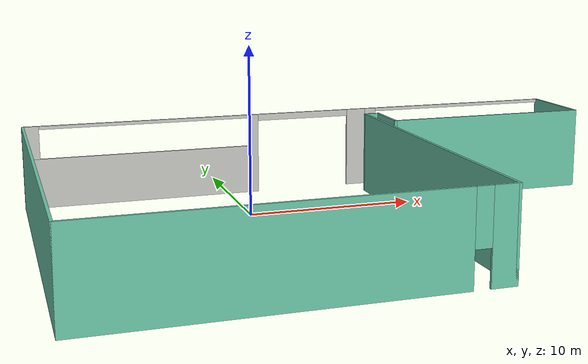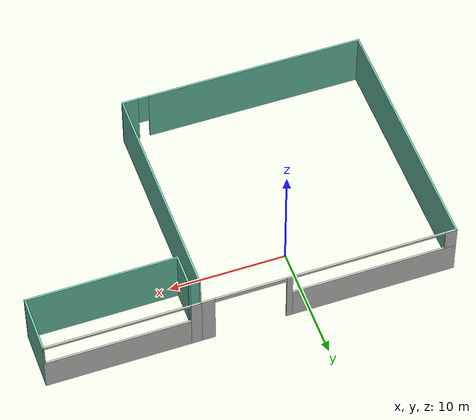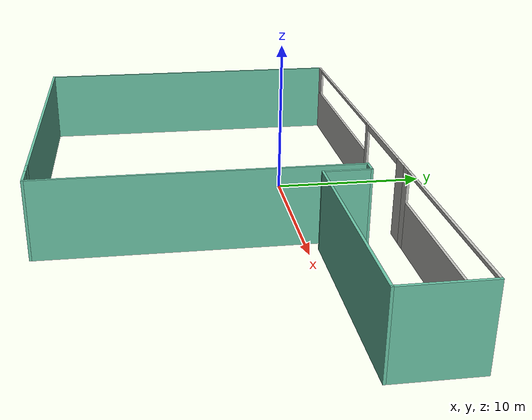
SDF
<?xml version='1.0'?>
<sdf version='1.6'>
  <model name='MAEB'>
    <pose frame=''>4.805 -5.212 0 0 -0 0</pose>
    <link name='Wall_0'>
      <pose frame=''>10.8 10.8 0 0 -0 0</pose>
      <visual name='Wall_0_Visual_0'>
        <pose frame=''>-6.0525 0 2.5 0 -0 0</pose>
        <geometry>
          <box>
            <size>0.895 0.15 5</size>
          </box>
        </geometry>
        <material>
          <script>
            <uri>file://media/materials/scripts/gazebo.material</uri>
            <name>Gazebo/CeilingTiled</name>
          </script>
          <ambient>0.435294 0.796078 0.67451 1</ambient>
        </material>
      </visual>
      <collision name='Wall_0_Collision_0'>
        <geometry>
          <box>
            <size>0.895 0.15 5</size>
          </box>
        </geometry>
        <pose frame=''>-6.0525 0 2.5 0 -0 0</pose>
      </collision>
      <visual name='Wall_0_Visual_1'>
        <pose frame=''>0.4475 0 1.5 0 -0 0</pose>
        <geometry>
          <box>
            <size>12.105 0.15 3</size>
          </box>
        </geometry>
        <material>
          <script>
            <uri>file://media/materials/scripts/gazebo.material</uri>
            <name>Gazebo/CeilingTiled</name>
          </script>
          <ambient>0.435294 0.796078 0.67451 1</ambient>
        </material>
      </visual>
      <collision name='Wall_0_Collision_1'>
        <geometry>
          <box>
            <size>12.105 0.15 3</size>
          </box>
        </geometry>
        <pose frame=''>0.4475 0 1.5 0 -0 0</pose>
      </collision>
      <visual name='Wall_0_Visual_2'>
        <pose frame=''>6.4475 0 4 0 -0 0</pose>
        <geometry>
          <box>
            <size>0.105 0.15 2</size>
          </box>
        </geometry>
        <material>
          <script>
            <uri>file://media/materials/scripts/gazebo.material</uri>
            <name>Gazebo/CeilingTiled</name>
          </script>
          <ambient>0.435294 0.796078 0.67451 1</ambient>
        </material>
      </visual>
      <collision name='Wall_0_Collision_2'>
        <geometry>
          <box>
            <size>0.105 0.15 2</size>
          </box>
        </geometry>
        <pose frame=''>6.4475 0 4 0 -0 0</pose>
      </collision>
      <visual name='Wall_0_Visual_3'>
        <pose frame=''>0.395 0 4.9 0 -0 0</pose>
        <geometry>
          <box>
            <size>12 0.15 0.2</size>
          </box>
        </geometry>
        <material>
          <script>
            <uri>file://media/materials/scripts/gazebo.material</uri>
            <name>Gazebo/CeilingTiled</name>
          </script>
          <ambient>0.435294 0.796078 0.67451 1</ambient>
        </material>
      </visual>
      <collision name='Wall_0_Collision_3'>
        <geometry>
          <box>
            <size>12 0.15 0.2</size>
          </box>
        </geometry>
        <pose frame=''>0.395 0 4.9 0 -0 0</pose>
      </collision>
    </link>
    <link name='Wall_1'>
      <collision name='Wall_1_Collision'>
        <geometry>
          <box>
            <size>5 0.15 5</size>
          </box>
        </geometry>
        <pose frame=''>0 0 2.5 0 -0 0</pose>
      </collision>
      <visual name='Wall_1_Visual'>
        <pose frame=''>0 0 2.5 0 -0 0</pose>
        <geometry>
          <box>
            <size>5 0.15 5</size>
          </box>
        </geometry>
        <material>
          <script>
            <uri>file://media/materials/scripts/gazebo.material</uri>
            <name>Gazebo/Grey</name>
          </script>
          <ambient>0.435294 0.796078 0.67451 1</ambient>
        </material>
      </visual>
      <pose frame=''>17.225 8.375 0 0 0 -1.5708</pose>
    </link>
    <link name='Wall_12'>
      <pose frame=''>-6.725 -10.8 0 0 -0 0</pose>
      <visual name='Wall_12_Visual_0'>
        <pose frame=''>-1.15743 0 2.5 0 -0 0</pose>
        <geometry>
          <box>
            <size>18.8351 0.15 5</size>
          </box>
        </geometry>
        <material>
          <script>
            <uri>file://media/materials/scripts/gazebo.material</uri>
            <name>Gazebo/Grey</name>
          </script>
          <ambient>0.435294 0.796078 0.67451 1</ambient>
        </material>
      </visual>
      <collision name='Wall_12_Collision_0'>
        <geometry>
          <box>
            <size>18.8351 0.15 5</size>
          </box>
        </geometry>
        <pose frame=''>-1.15743 0 2.5 0 -0 0</pose>
      </collision>
      <visual name='Wall_12_Visual_1'>
        <pose frame=''>9.86757 0 2.5 0 -0 0</pose>
        <geometry>
          <box>
            <size>1.41485 0.15 5</size>
          </box>
        </geometry>
        <material>
          <script>
            <uri>file://media/materials/scripts/gazebo.material</uri>
            <name>Gazebo/Grey</name>
          </script>
          <ambient>0.435294 0.796078 0.67451 1</ambient>
        </material>
      </visual>
      <collision name='Wall_12_Collision_1'>
        <geometry>
          <box>
            <size>1.41485 0.15 5</size>
          </box>
        </geometry>
        <pose frame=''>9.86757 0 2.5 0 -0 0</pose>
      </collision>
      <visual name='Wall_12_Visual_2'>
        <pose frame=''>8.71015 0 3.5 0 -0 0</pose>
        <geometry>
          <box>
            <size>0.9 0.15 3</size>
          </box>
        </geometry>
        <material>
          <script>
            <uri>file://media/materials/scripts/gazebo.material</uri>
            <name>Gazebo/Grey</name>
          </script>
          <ambient>0.435294 0.796078 0.67451 1</ambient>
        </material>
      </visual>
      <collision name='Wall_12_Collision_2'>
        <geometry>
          <box>
            <size>0.9 0.15 3</size>
          </box>
        </geometry>
        <pose frame=''>8.71015 0 3.5 0 -0 0</pose>
      </collision>
    </link>
    <link name='Wall_2'>
      <collision name='Wall_2_Collision'>
        <geometry>
          <box>
            <size>12.75 0.15 5</size>
          </box>
        </geometry>
        <pose frame=''>0 0 2.5 0 -0 0</pose>
      </collision>
      <visual name='Wall_2_Visual'>
        <pose frame=''>0 0 2.5 0 -0 0</pose>
        <geometry>
          <box>
            <size>12.75 0.15 5</size>
          </box>
        </geometry>
        <material>
          <script>
            <uri>file://media/materials/scripts/gazebo.material</uri>
            <name>Gazebo/Grey</name>
          </script>
          <ambient>0.435294 0.796078 0.67451 1</ambient>
        </material>
      </visual>
      <pose frame=''>10.925 5.95 0 0 -0 3.14159</pose>
    </link>
    <link name='Wall_3'>
      <collision name='Wall_3_Collision'>
        <geometry>
          <box>
            <size>3 0.15 5</size>
          </box>
        </geometry>
        <pose frame=''>0 0 2.5 0 -0 0</pose>
      </collision>
      <visual name='Wall_3_Visual'>
        <pose frame=''>0 0 2.5 0 -0 0</pose>
        <geometry>
          <box>
            <size>3 0.15 5</size>
          </box>
        </geometry>
        <material>
          <script>
            <uri>file://media/materials/scripts/gazebo.material</uri>
            <name>Gazebo/Grey</name>
          </script>
          <ambient>0.435294 0.796078 0.67451 1</ambient>
        </material>
      </visual>
      <pose frame=''>4.625 7.375 0 0 -0 1.5708</pose>
    </link>
    <link name='Wall_5'>
      <pose frame=''>-6.425 10.8 0 0 -0 3.14159</pose>
      <visual name='Wall_5_Visual_0'>
        <pose frame=''>-10.2475 0 2.5 0 -0 0</pose>
        <geometry>
          <box>
            <size>1.255 0.15 5</size>
          </box>
        </geometry>
        <material>
          <script>
            <uri>file://media/materials/scripts/gazebo.material</uri>
            <name>Gazebo/CeilingTiled</name>
          </script>
          <ambient>0.435294 0.796078 0.67451 1</ambient>
        </material>
      </visual>
      <collision name='Wall_5_Collision_0'>
        <geometry>
          <box>
            <size>1.255 0.15 5</size>
          </box>
        </geometry>
        <pose frame=''>-10.2475 0 2.5 0 -0 0</pose>
      </collision>
      <visual name='Wall_5_Visual_1'>
        <pose frame=''>-3.37 0 2.5 0 -0 0</pose>
        <geometry>
          <box>
            <size>0.5 0.15 5</size>
          </box>
        </geometry>
        <material>
          <script>
            <uri>file://media/materials/scripts/gazebo.material</uri>
            <name>Gazebo/CeilingTiled</name>
          </script>
          <ambient>0.435294 0.796078 0.67451 1</ambient>
        </material>
      </visual>
      <collision name='Wall_5_Collision_1'>
        <geometry>
          <box>
            <size>0.5 0.15 5</size>
          </box>
        </geometry>
        <pose frame=''>-3.37 0 2.5 0 -0 0</pose>
      </collision>
      <visual name='Wall_5_Visual_2'>
        <pose frame=''>3.8775 0 1.5 0 -0 0</pose>
        <geometry>
          <box>
            <size>13.995 0.15 3</size>
          </box>
        </geometry>
        <material>
          <script>
            <uri>file://media/materials/scripts/gazebo.material</uri>
            <name>Gazebo/CeilingTiled</name>
          </script>
          <ambient>0.435294 0.796078 0.67451 1</ambient>
        </material>
      </visual>
      <collision name='Wall_5_Collision_2'>
        <geometry>
          <box>
            <size>13.995 0.15 3</size>
          </box>
        </geometry>
        <pose frame=''>3.8775 0 1.5 0 -0 0</pose>
      </collision>
      <visual name='Wall_5_Visual_3'>
        <pose frame=''>10.3775 0 4 0 -0 0</pose>
        <geometry>
          <box>
            <size>0.995 0.15 2</size>
          </box>
        </geometry>
        <material>
          <script>
            <uri>file://media/materials/scripts/gazebo.material</uri>
            <name>Gazebo/CeilingTiled</name>
          </script>
          <ambient>0.435294 0.796078 0.67451 1</ambient>
        </material>
      </visual>
      <collision name='Wall_5_Collision_3'>
        <geometry>
          <box>
            <size>0.995 0.15 2</size>
          </box>
        </geometry>
        <pose frame=''>10.3775 0 4 0 -0 0</pose>
      </collision>
      <visual name='Wall_5_Visual_4'>
        <pose frame=''>-6.62 0 4.8 0 -0 0</pose>
        <geometry>
          <box>
            <size>6 0.15 0.4</size>
          </box>
        </geometry>
        <material>
          <script>
            <uri>file://media/materials/scripts/gazebo.material</uri>
            <name>Gazebo/CeilingTiled</name>
          </script>
          <ambient>0.435294 0.796078 0.67451 1</ambient>
        </material>
      </visual>
      <collision name='Wall_5_Collision_4'>
        <geometry>
          <box>
            <size>6 0.15 0.4</size>
          </box>
        </geometry>
        <pose frame=''>-6.62 0 4.8 0 -0 0</pose>
      </collision>
      <visual name='Wall_5_Visual_5'>
        <pose frame=''>3.38 0 4.9 0 -0 0</pose>
        <geometry>
          <box>
            <size>13 0.15 0.2</size>
          </box>
        </geometry>
        <material>
          <script>
            <uri>file://media/materials/scripts/gazebo.material</uri>
            <name>Gazebo/CeilingTiled</name>
          </script>
          <ambient>0.435294 0.796078 0.67451 1</ambient>
        </material>
      </visual>
      <collision name='Wall_5_Collision_5'>
        <geometry>
          <box>
            <size>13 0.15 0.2</size>
          </box>
        </geometry>
        <pose frame=''>3.38 0 4.9 0 -0 0</pose>
      </collision>
    </link>
    <link name='Wall_6'>
      <collision name='Wall_6_Collision'>
        <geometry>
          <box>
            <size>21.75 0.15 5</size>
          </box>
        </geometry>
        <pose frame=''>0 0 2.5 0 -0 0</pose>
      </collision>
      <visual name='Wall_6_Visual'>
        <pose frame=''>0 0 2.5 0 -0 0</pose>
        <geometry>
          <box>
            <size>21.75 0.15 5</size>
          </box>
        </geometry>
        <material>
          <script>
            <uri>file://media/materials/scripts/gazebo.material</uri>
            <name>Gazebo/Grey</name>
          </script>
          <ambient>0.435294 0.796078 0.67451 1</ambient>
        </material>
      </visual>
      <pose frame=''>-17.225 0 0 0 0 -1.5708</pose>
    </link>
    <link name='Wall_8'>
      <collision name='Wall_8_Collision'>
        <geometry>
          <box>
            <size>1 0.15 5</size>
          </box>
        </geometry>
        <pose frame=''>0 0 2.5 0 -0 0</pose>
      </collision>
      <visual name='Wall_8_Visual'>
        <pose frame=''>0 0 2.5 0 -0 0</pose>
        <geometry>
          <box>
            <size>1 0.15 5</size>
          </box>
        </geometry>
        <material>
          <script>
            <uri>file://media/materials/scripts/gazebo.material</uri>
            <name>Gazebo/Grey</name>
          </script>
          <ambient>0.435294 0.796078 0.67451 1</ambient>
        </material>
      </visual>
      <pose frame=''>4.2 8.8 0 0 -0 3.14159</pose>
    </link>
    <link name='Wall_9'>
      <collision name='Wall_9_Collision'>
        <geometry>
          <box>
            <size>19.75 0.15 5</size>
          </box>
        </geometry>
        <pose frame=''>0 0 2.5 0 -0 0</pose>
      </collision>
      <visual name='Wall_9_Visual'>
        <pose frame=''>0 0 2.5 0 -0 0</pose>
        <geometry>
          <box>
            <size>19.75 0.15 5</size>
          </box>
        </geometry>
        <material>
          <script>
            <uri>file://media/materials/scripts/gazebo.material</uri>
            <name>Gazebo/Grey</name>
          </script>
          <ambient>0.435294 0.796078 0.67451 1</ambient>
        </material>
      </visual>
      <pose frame=''>3.775 -1 0 0 0 -1.5708</pose>
    </link>
    <static>1</static>
  </model>
</sdf>
